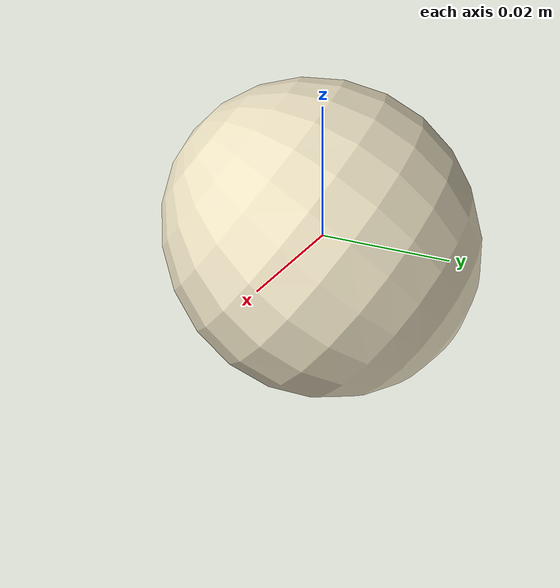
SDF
<?xml version="1.0"?>
<sdf version="1.7">
  <model name="cotton_pick_A_11">
    <static>false</static>
    <allow_auto_disable>false</allow_auto_disable>
    <link name="cotton_pick_A_11_link">
      <gravity>false</gravity>
      <self_collide>false</self_collide>
      <inertial>
        <mass>0.01200</mass>
        <inertia>
          <ixx>0.00000224</ixx>
          <iyy>0.00000224</iyy>
          <izz>0.00000224</izz>
          <ixy>0</ixy>
          <ixz>0</ixz>
          <iyz>0</iyz>
        </inertia>
      </inertial>
      <visual name="cotton_pick_A_11_visual">
        <geometry>
          <mesh>
            <uri>model://cotton_pick_A_11/meshes/cotton_pick_A_11.dae</uri>
          </mesh>
        </geometry>
      </visual>
      <collision name="cotton_pick_A_11_sphere_collision">
        <geometry>
          <sphere>
            <radius>0.02162</radius>
          </sphere>
        </geometry>
        <surface>
          <friction>
            <ode>
              <mu>1.6</mu>
              <mu2>1.6</mu2>
            </ode>
          </friction>
          <contact>
            <ode>
              <kp>8000</kp>
              <kd>80</kd>
            </ode>
          </contact>
        </surface>
      </collision>
    </link>
  </model>
</sdf>
